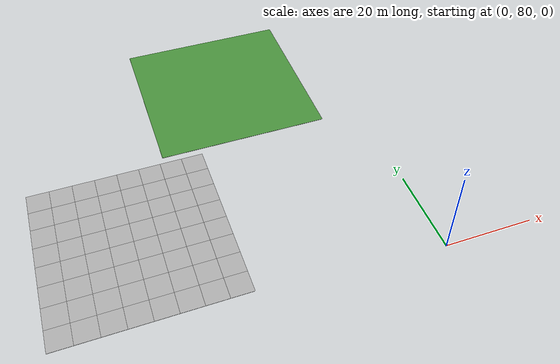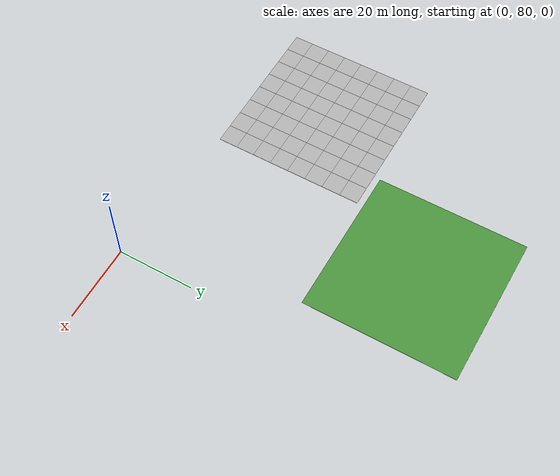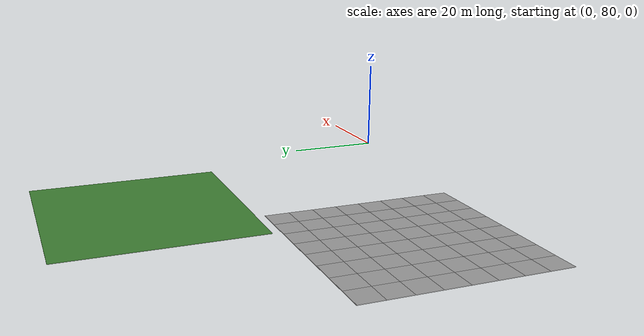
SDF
<sdf version="1.7">
 <world name="default">
  <model name="mud_plane_40x40_16">
   <model name="mud_plane_20x20">
    <model name="mud_plane">
     <static>1</static>
     <link name="link">
      <collision name="collision"><geometry><box><size>10 10 0.1</size></box></geometry></collision>
      <visual name="visual_1">
       <pose>-2.5 2.5 -0.05 0 -0 0</pose>
       <cast_shadows>0</cast_shadows>
       <geometry><box><size>5 5 0.1</size></box></geometry>
       <material>
        <script>
         <uri>model://mud_plane/materials/scripts</uri>
         <uri>model://mud_plane/materials/textures</uri>
         <name>vrc/mud</name>
        </script>
       </material>
      </visual>
      <visual name="visual_2">
       <pose>2.5 2.5 -0.05 0 -0 0</pose>
       <cast_shadows>0</cast_shadows>
       <geometry><box><size>5 5 0.1</size></box></geometry>
       <material>
        <script>
         <uri>model://mud_plane/materials/scripts</uri>
         <uri>model://mud_plane/materials/textures</uri>
         <name>vrc/mud</name>
        </script>
       </material>
      </visual>
      <visual name="visual_3">
       <pose>2.5 -2.5 -0.05 0 -0 0</pose>
       <cast_shadows>0</cast_shadows>
       <geometry><box><size>5 5 0.1</size></box></geometry>
       <material>
        <script>
         <uri>model://mud_plane/materials/scripts</uri>
         <uri>model://mud_plane/materials/textures</uri>
         <name>vrc/mud</name>
        </script>
       </material>
      </visual>
      <visual name="visual_4">
       <pose>-2.5 -2.5 -0.05 0 -0 0</pose>
       <cast_shadows>0</cast_shadows>
       <geometry><box><size>5 5 0.1</size></box></geometry>
       <material>
        <script>
         <uri>model://mud_plane/materials/scripts</uri>
         <uri>model://mud_plane/materials/textures</uri>
         <name>vrc/mud</name>
        </script>
       </material>
      </visual>
     </link>
     <pose>-4.99986 -4.99991 0 0 -0 0</pose>
    </model>
    <model name="mud_plane_0">
     <static>1</static>
     <link name="link">
      <collision name="collision"><geometry><box><size>10 10 0.1</size></box></geometry></collision>
      <visual name="visual_1">
       <pose>-2.5 2.5 -0.05 0 -0 0</pose>
       <cast_shadows>0</cast_shadows>
       <geometry><box><size>5 5 0.1</size></box></geometry>
       <material>
        <script>
         <uri>model://mud_plane/materials/scripts</uri>
         <uri>model://mud_plane/materials/textures</uri>
         <name>vrc/mud</name>
        </script>
       </material>
      </visual>
      <visual name="visual_2">
       <pose>2.5 2.5 -0.05 0 -0 0</pose>
       <cast_shadows>0</cast_shadows>
       <geometry><box><size>5 5 0.1</size></box></geometry>
       <material>
        <script>
         <uri>model://mud_plane/materials/scripts</uri>
         <uri>model://mud_plane/materials/textures</uri>
         <name>vrc/mud</name>
        </script>
       </material>
      </visual>
      <visual name="visual_3">
       <pose>2.5 -2.5 -0.05 0 -0 0</pose>
       <cast_shadows>0</cast_shadows>
       <geometry><box><size>5 5 0.1</size></box></geometry>
       <material>
        <script>
         <uri>model://mud_plane/materials/scripts</uri>
         <uri>model://mud_plane/materials/textures</uri>
         <name>vrc/mud</name>
        </script>
       </material>
      </visual>
      <visual name="visual_4">
       <pose>-2.5 -2.5 -0.05 0 -0 0</pose>
       <cast_shadows>0</cast_shadows>
       <geometry><box><size>5 5 0.1</size></box></geometry>
       <material>
        <script>
         <uri>model://mud_plane/materials/scripts</uri>
         <uri>model://mud_plane/materials/textures</uri>
         <name>vrc/mud</name>
        </script>
       </material>
      </visual>
     </link>
     <pose>-4.99946 4.99954 0 0 -0 0</pose>
    </model>
    <model name="mud_plane_1">
     <static>1</static>
     <link name="link">
      <collision name="collision"><geometry><box><size>10 10 0.1</size></box></geometry></collision>
      <visual name="visual_1">
       <pose>-2.5 2.5 -0.05 0 -0 0</pose>
       <cast_shadows>0</cast_shadows>
       <geometry><box><size>5 5 0.1</size></box></geometry>
       <material>
        <script>
         <uri>model://mud_plane/materials/scripts</uri>
         <uri>model://mud_plane/materials/textures</uri>
         <name>vrc/mud</name>
        </script>
       </material>
      </visual>
      <visual name="visual_2">
       <pose>2.5 2.5 -0.05 0 -0 0</pose>
       <cast_shadows>0</cast_shadows>
       <geometry><box><size>5 5 0.1</size></box></geometry>
       <material>
        <script>
         <uri>model://mud_plane/materials/scripts</uri>
         <uri>model://mud_plane/materials/textures</uri>
         <name>vrc/mud</name>
        </script>
       </material>
      </visual>
      <visual name="visual_3">
       <pose>2.5 -2.5 -0.05 0 -0 0</pose>
       <cast_shadows>0</cast_shadows>
       <geometry><box><size>5 5 0.1</size></box></geometry>
       <material>
        <script>
         <uri>model://mud_plane/materials/scripts</uri>
         <uri>model://mud_plane/materials/textures</uri>
         <name>vrc/mud</name>
        </script>
       </material>
      </visual>
      <visual name="visual_4">
       <pose>-2.5 -2.5 -0.05 0 -0 0</pose>
       <cast_shadows>0</cast_shadows>
       <geometry><box><size>5 5 0.1</size></box></geometry>
       <material>
        <script>
         <uri>model://mud_plane/materials/scripts</uri>
         <uri>model://mud_plane/materials/textures</uri>
         <name>vrc/mud</name>
        </script>
       </material>
      </visual>
     </link>
     <pose>4.99964 -4.99949 0 0 -0 0</pose>
    </model>
    <model name="mud_plane_2">
     <static>1</static>
     <link name="link">
      <collision name="collision"><geometry><box><size>10 10 0.1</size></box></geometry></collision>
      <visual name="visual_1">
       <pose>-2.5 2.5 -0.05 0 -0 0</pose>
       <cast_shadows>0</cast_shadows>
       <geometry><box><size>5 5 0.1</size></box></geometry>
       <material>
        <script>
         <uri>model://mud_plane/materials/scripts</uri>
         <uri>model://mud_plane/materials/textures</uri>
         <name>vrc/mud</name>
        </script>
       </material>
      </visual>
      <visual name="visual_2">
       <pose>2.5 2.5 -0.05 0 -0 0</pose>
       <cast_shadows>0</cast_shadows>
       <geometry><box><size>5 5 0.1</size></box></geometry>
       <material>
        <script>
         <uri>model://mud_plane/materials/scripts</uri>
         <uri>model://mud_plane/materials/textures</uri>
         <name>vrc/mud</name>
        </script>
       </material>
      </visual>
      <visual name="visual_3">
       <pose>2.5 -2.5 -0.05 0 -0 0</pose>
       <cast_shadows>0</cast_shadows>
       <geometry><box><size>5 5 0.1</size></box></geometry>
       <material>
        <script>
         <uri>model://mud_plane/materials/scripts</uri>
         <uri>model://mud_plane/materials/textures</uri>
         <name>vrc/mud</name>
        </script>
       </material>
      </visual>
      <visual name="visual_4">
       <pose>-2.5 -2.5 -0.05 0 -0 0</pose>
       <cast_shadows>0</cast_shadows>
       <geometry><box><size>5 5 0.1</size></box></geometry>
       <material>
        <script>
         <uri>model://mud_plane/materials/scripts</uri>
         <uri>model://mud_plane/materials/textures</uri>
         <name>vrc/mud</name>
        </script>
       </material>
      </visual>
     </link>
     <pose>4.99967 4.99986 0 0 -0 0</pose>
    </model>
    <static>0</static>
    <pose>-9.99895 9.99843 0 0 -0 0</pose>
   </model>
   <model name="mud_plane_20x20_0">
    <model name="mud_plane">
     <static>1</static>
     <link name="link">
      <collision name="collision"><geometry><box><size>10 10 0.1</size></box></geometry></collision>
      <visual name="visual_1">
       <pose>-2.5 2.5 -0.05 0 -0 0</pose>
       <cast_shadows>0</cast_shadows>
       <geometry><box><size>5 5 0.1</size></box></geometry>
       <material>
        <script>
         <uri>model://mud_plane/materials/scripts</uri>
         <uri>model://mud_plane/materials/textures</uri>
         <name>vrc/mud</name>
        </script>
       </material>
      </visual>
      <visual name="visual_2">
       <pose>2.5 2.5 -0.05 0 -0 0</pose>
       <cast_shadows>0</cast_shadows>
       <geometry><box><size>5 5 0.1</size></box></geometry>
       <material>
        <script>
         <uri>model://mud_plane/materials/scripts</uri>
         <uri>model://mud_plane/materials/textures</uri>
         <name>vrc/mud</name>
        </script>
       </material>
      </visual>
      <visual name="visual_3">
       <pose>2.5 -2.5 -0.05 0 -0 0</pose>
       <cast_shadows>0</cast_shadows>
       <geometry><box><size>5 5 0.1</size></box></geometry>
       <material>
        <script>
         <uri>model://mud_plane/materials/scripts</uri>
         <uri>model://mud_plane/materials/textures</uri>
         <name>vrc/mud</name>
        </script>
       </material>
      </visual>
      <visual name="visual_4">
       <pose>-2.5 -2.5 -0.05 0 -0 0</pose>
       <cast_shadows>0</cast_shadows>
       <geometry><box><size>5 5 0.1</size></box></geometry>
       <material>
        <script>
         <uri>model://mud_plane/materials/scripts</uri>
         <uri>model://mud_plane/materials/textures</uri>
         <name>vrc/mud</name>
        </script>
       </material>
      </visual>
     </link>
     <pose>-4.99986 -4.99991 0 0 -0 0</pose>
    </model>
    <model name="mud_plane_0">
     <static>1</static>
     <link name="link">
      <collision name="collision"><geometry><box><size>10 10 0.1</size></box></geometry></collision>
      <visual name="visual_1">
       <pose>-2.5 2.5 -0.05 0 -0 0</pose>
       <cast_shadows>0</cast_shadows>
       <geometry><box><size>5 5 0.1</size></box></geometry>
       <material>
        <script>
         <uri>model://mud_plane/materials/scripts</uri>
         <uri>model://mud_plane/materials/textures</uri>
         <name>vrc/mud</name>
        </script>
       </material>
      </visual>
      <visual name="visual_2">
       <pose>2.5 2.5 -0.05 0 -0 0</pose>
       <cast_shadows>0</cast_shadows>
       <geometry><box><size>5 5 0.1</size></box></geometry>
       <material>
        <script>
         <uri>model://mud_plane/materials/scripts</uri>
         <uri>model://mud_plane/materials/textures</uri>
         <name>vrc/mud</name>
        </script>
       </material>
      </visual>
      <visual name="visual_3">
       <pose>2.5 -2.5 -0.05 0 -0 0</pose>
       <cast_shadows>0</cast_shadows>
       <geometry><box><size>5 5 0.1</size></box></geometry>
       <material>
        <script>
         <uri>model://mud_plane/materials/scripts</uri>
         <uri>model://mud_plane/materials/textures</uri>
         <name>vrc/mud</name>
        </script>
       </material>
      </visual>
      <visual name="visual_4">
       <pose>-2.5 -2.5 -0.05 0 -0 0</pose>
       <cast_shadows>0</cast_shadows>
       <geometry><box><size>5 5 0.1</size></box></geometry>
       <material>
        <script>
         <uri>model://mud_plane/materials/scripts</uri>
         <uri>model://mud_plane/materials/textures</uri>
         <name>vrc/mud</name>
        </script>
       </material>
      </visual>
     </link>
     <pose>-4.99946 4.99954 0 0 -0 0</pose>
    </model>
    <model name="mud_plane_1">
     <static>1</static>
     <link name="link">
      <collision name="collision"><geometry><box><size>10 10 0.1</size></box></geometry></collision>
      <visual name="visual_1">
       <pose>-2.5 2.5 -0.05 0 -0 0</pose>
       <cast_shadows>0</cast_shadows>
       <geometry><box><size>5 5 0.1</size></box></geometry>
       <material>
        <script>
         <uri>model://mud_plane/materials/scripts</uri>
         <uri>model://mud_plane/materials/textures</uri>
         <name>vrc/mud</name>
        </script>
       </material>
      </visual>
      <visual name="visual_2">
       <pose>2.5 2.5 -0.05 0 -0 0</pose>
       <cast_shadows>0</cast_shadows>
       <geometry><box><size>5 5 0.1</size></box></geometry>
       <material>
        <script>
         <uri>model://mud_plane/materials/scripts</uri>
         <uri>model://mud_plane/materials/textures</uri>
         <name>vrc/mud</name>
        </script>
       </material>
      </visual>
      <visual name="visual_3">
       <pose>2.5 -2.5 -0.05 0 -0 0</pose>
       <cast_shadows>0</cast_shadows>
       <geometry><box><size>5 5 0.1</size></box></geometry>
       <material>
        <script>
         <uri>model://mud_plane/materials/scripts</uri>
         <uri>model://mud_plane/materials/textures</uri>
         <name>vrc/mud</name>
        </script>
       </material>
      </visual>
      <visual name="visual_4">
       <pose>-2.5 -2.5 -0.05 0 -0 0</pose>
       <cast_shadows>0</cast_shadows>
       <geometry><box><size>5 5 0.1</size></box></geometry>
       <material>
        <script>
         <uri>model://mud_plane/materials/scripts</uri>
         <uri>model://mud_plane/materials/textures</uri>
         <name>vrc/mud</name>
        </script>
       </material>
      </visual>
     </link>
     <pose>4.99964 -4.99949 0 0 -0 0</pose>
    </model>
    <model name="mud_plane_2">
     <static>1</static>
     <link name="link">
      <collision name="collision"><geometry><box><size>10 10 0.1</size></box></geometry></collision>
      <visual name="visual_1">
       <pose>-2.5 2.5 -0.05 0 -0 0</pose>
       <cast_shadows>0</cast_shadows>
       <geometry><box><size>5 5 0.1</size></box></geometry>
       <material>
        <script>
         <uri>model://mud_plane/materials/scripts</uri>
         <uri>model://mud_plane/materials/textures</uri>
         <name>vrc/mud</name>
        </script>
       </material>
      </visual>
      <visual name="visual_2">
       <pose>2.5 2.5 -0.05 0 -0 0</pose>
       <cast_shadows>0</cast_shadows>
       <geometry><box><size>5 5 0.1</size></box></geometry>
       <material>
        <script>
         <uri>model://mud_plane/materials/scripts</uri>
         <uri>model://mud_plane/materials/textures</uri>
         <name>vrc/mud</name>
        </script>
       </material>
      </visual>
      <visual name="visual_3">
       <pose>2.5 -2.5 -0.05 0 -0 0</pose>
       <cast_shadows>0</cast_shadows>
       <geometry><box><size>5 5 0.1</size></box></geometry>
       <material>
        <script>
         <uri>model://mud_plane/materials/scripts</uri>
         <uri>model://mud_plane/materials/textures</uri>
         <name>vrc/mud</name>
        </script>
       </material>
      </visual>
      <visual name="visual_4">
       <pose>-2.5 -2.5 -0.05 0 -0 0</pose>
       <cast_shadows>0</cast_shadows>
       <geometry><box><size>5 5 0.1</size></box></geometry>
       <material>
        <script>
         <uri>model://mud_plane/materials/scripts</uri>
         <uri>model://mud_plane/materials/textures</uri>
         <name>vrc/mud</name>
        </script>
       </material>
      </visual>
     </link>
     <pose>4.99967 4.99986 0 0 -0 0</pose>
    </model>
    <static>0</static>
    <pose>9.99933 9.9997 0 0 -0 0</pose>
   </model>
   <model name="mud_plane_20x20_1">
    <model name="mud_plane">
     <static>1</static>
     <link name="link">
      <collision name="collision"><geometry><box><size>10 10 0.1</size></box></geometry></collision>
      <visual name="visual_1">
       <pose>-2.5 2.5 -0.05 0 -0 0</pose>
       <cast_shadows>0</cast_shadows>
       <geometry><box><size>5 5 0.1</size></box></geometry>
       <material>
        <script>
         <uri>model://mud_plane/materials/scripts</uri>
         <uri>model://mud_plane/materials/textures</uri>
         <name>vrc/mud</name>
        </script>
       </material>
      </visual>
      <visual name="visual_2">
       <pose>2.5 2.5 -0.05 0 -0 0</pose>
       <cast_shadows>0</cast_shadows>
       <geometry><box><size>5 5 0.1</size></box></geometry>
       <material>
        <script>
         <uri>model://mud_plane/materials/scripts</uri>
         <uri>model://mud_plane/materials/textures</uri>
         <name>vrc/mud</name>
        </script>
       </material>
      </visual>
      <visual name="visual_3">
       <pose>2.5 -2.5 -0.05 0 -0 0</pose>
       <cast_shadows>0</cast_shadows>
       <geometry><box><size>5 5 0.1</size></box></geometry>
       <material>
        <script>
         <uri>model://mud_plane/materials/scripts</uri>
         <uri>model://mud_plane/materials/textures</uri>
         <name>vrc/mud</name>
        </script>
       </material>
      </visual>
      <visual name="visual_4">
       <pose>-2.5 -2.5 -0.05 0 -0 0</pose>
       <cast_shadows>0</cast_shadows>
       <geometry><box><size>5 5 0.1</size></box></geometry>
       <material>
        <script>
         <uri>model://mud_plane/materials/scripts</uri>
         <uri>model://mud_plane/materials/textures</uri>
         <name>vrc/mud</name>
        </script>
       </material>
      </visual>
     </link>
     <pose>-4.99986 -4.99991 0 0 -0 0</pose>
    </model>
    <model name="mud_plane_0">
     <static>1</static>
     <link name="link">
      <collision name="collision"><geometry><box><size>10 10 0.1</size></box></geometry></collision>
      <visual name="visual_1">
       <pose>-2.5 2.5 -0.05 0 -0 0</pose>
       <cast_shadows>0</cast_shadows>
       <geometry><box><size>5 5 0.1</size></box></geometry>
       <material>
        <script>
         <uri>model://mud_plane/materials/scripts</uri>
         <uri>model://mud_plane/materials/textures</uri>
         <name>vrc/mud</name>
        </script>
       </material>
      </visual>
      <visual name="visual_2">
       <pose>2.5 2.5 -0.05 0 -0 0</pose>
       <cast_shadows>0</cast_shadows>
       <geometry><box><size>5 5 0.1</size></box></geometry>
       <material>
        <script>
         <uri>model://mud_plane/materials/scripts</uri>
         <uri>model://mud_plane/materials/textures</uri>
         <name>vrc/mud</name>
        </script>
       </material>
      </visual>
      <visual name="visual_3">
       <pose>2.5 -2.5 -0.05 0 -0 0</pose>
       <cast_shadows>0</cast_shadows>
       <geometry><box><size>5 5 0.1</size></box></geometry>
       <material>
        <script>
         <uri>model://mud_plane/materials/scripts</uri>
         <uri>model://mud_plane/materials/textures</uri>
         <name>vrc/mud</name>
        </script>
       </material>
      </visual>
      <visual name="visual_4">
       <pose>-2.5 -2.5 -0.05 0 -0 0</pose>
       <cast_shadows>0</cast_shadows>
       <geometry><box><size>5 5 0.1</size></box></geometry>
       <material>
        <script>
         <uri>model://mud_plane/materials/scripts</uri>
         <uri>model://mud_plane/materials/textures</uri>
         <name>vrc/mud</name>
        </script>
       </material>
      </visual>
     </link>
     <pose>-4.99946 4.99954 0 0 -0 0</pose>
    </model>
    <model name="mud_plane_1">
     <static>1</static>
     <link name="link">
      <collision name="collision"><geometry><box><size>10 10 0.1</size></box></geometry></collision>
      <visual name="visual_1">
       <pose>-2.5 2.5 -0.05 0 -0 0</pose>
       <cast_shadows>0</cast_shadows>
       <geometry><box><size>5 5 0.1</size></box></geometry>
       <material>
        <script>
         <uri>model://mud_plane/materials/scripts</uri>
         <uri>model://mud_plane/materials/textures</uri>
         <name>vrc/mud</name>
        </script>
       </material>
      </visual>
      <visual name="visual_2">
       <pose>2.5 2.5 -0.05 0 -0 0</pose>
       <cast_shadows>0</cast_shadows>
       <geometry><box><size>5 5 0.1</size></box></geometry>
       <material>
        <script>
         <uri>model://mud_plane/materials/scripts</uri>
         <uri>model://mud_plane/materials/textures</uri>
         <name>vrc/mud</name>
        </script>
       </material>
      </visual>
      <visual name="visual_3">
       <pose>2.5 -2.5 -0.05 0 -0 0</pose>
       <cast_shadows>0</cast_shadows>
       <geometry><box><size>5 5 0.1</size></box></geometry>
       <material>
        <script>
         <uri>model://mud_plane/materials/scripts</uri>
         <uri>model://mud_plane/materials/textures</uri>
         <name>vrc/mud</name>
        </script>
       </material>
      </visual>
      <visual name="visual_4">
       <pose>-2.5 -2.5 -0.05 0 -0 0</pose>
       <cast_shadows>0</cast_shadows>
       <geometry><box><size>5 5 0.1</size></box></geometry>
       <material>
        <script>
         <uri>model://mud_plane/materials/scripts</uri>
         <uri>model://mud_plane/materials/textures</uri>
         <name>vrc/mud</name>
        </script>
       </material>
      </visual>
     </link>
     <pose>4.99964 -4.99949 0 0 -0 0</pose>
    </model>
    <model name="mud_plane_2">
     <static>1</static>
     <link name="link">
      <collision name="collision"><geometry><box><size>10 10 0.1</size></box></geometry></collision>
      <visual name="visual_1">
       <pose>-2.5 2.5 -0.05 0 -0 0</pose>
       <cast_shadows>0</cast_shadows>
       <geometry><box><size>5 5 0.1</size></box></geometry>
       <material>
        <script>
         <uri>model://mud_plane/materials/scripts</uri>
         <uri>model://mud_plane/materials/textures</uri>
         <name>vrc/mud</name>
        </script>
       </material>
      </visual>
      <visual name="visual_2">
       <pose>2.5 2.5 -0.05 0 -0 0</pose>
       <cast_shadows>0</cast_shadows>
       <geometry><box><size>5 5 0.1</size></box></geometry>
       <material>
        <script>
         <uri>model://mud_plane/materials/scripts</uri>
         <uri>model://mud_plane/materials/textures</uri>
         <name>vrc/mud</name>
        </script>
       </material>
      </visual>
      <visual name="visual_3">
       <pose>2.5 -2.5 -0.05 0 -0 0</pose>
       <cast_shadows>0</cast_shadows>
       <geometry><box><size>5 5 0.1</size></box></geometry>
       <material>
        <script>
         <uri>model://mud_plane/materials/scripts</uri>
         <uri>model://mud_plane/materials/textures</uri>
         <name>vrc/mud</name>
        </script>
       </material>
      </visual>
      <visual name="visual_4">
       <pose>-2.5 -2.5 -0.05 0 -0 0</pose>
       <cast_shadows>0</cast_shadows>
       <geometry><box><size>5 5 0.1</size></box></geometry>
       <material>
        <script>
         <uri>model://mud_plane/materials/scripts</uri>
         <uri>model://mud_plane/materials/textures</uri>
         <name>vrc/mud</name>
        </script>
       </material>
      </visual>
     </link>
     <pose>4.99967 4.99986 0 0 -0 0</pose>
    </model>
    <static>0</static>
    <pose>9.9993 -9.99877 0 0 -0 0</pose>
   </model>
   <model name="mud_plane_20x20_2">
    <model name="mud_plane">
     <static>1</static>
     <link name="link">
      <collision name="collision"><geometry><box><size>10 10 0.1</size></box></geometry></collision>
      <visual name="visual_1">
       <pose>-2.5 2.5 -0.05 0 -0 0</pose>
       <cast_shadows>0</cast_shadows>
       <geometry><box><size>5 5 0.1</size></box></geometry>
       <material>
        <script>
         <uri>model://mud_plane/materials/scripts</uri>
         <uri>model://mud_plane/materials/textures</uri>
         <name>vrc/mud</name>
        </script>
       </material>
      </visual>
      <visual name="visual_2">
       <pose>2.5 2.5 -0.05 0 -0 0</pose>
       <cast_shadows>0</cast_shadows>
       <geometry><box><size>5 5 0.1</size></box></geometry>
       <material>
        <script>
         <uri>model://mud_plane/materials/scripts</uri>
         <uri>model://mud_plane/materials/textures</uri>
         <name>vrc/mud</name>
        </script>
       </material>
      </visual>
      <visual name="visual_3">
       <pose>2.5 -2.5 -0.05 0 -0 0</pose>
       <cast_shadows>0</cast_shadows>
       <geometry><box><size>5 5 0.1</size></box></geometry>
       <material>
        <script>
         <uri>model://mud_plane/materials/scripts</uri>
         <uri>model://mud_plane/materials/textures</uri>
         <name>vrc/mud</name>
        </script>
       </material>
      </visual>
      <visual name="visual_4">
       <pose>-2.5 -2.5 -0.05 0 -0 0</pose>
       <cast_shadows>0</cast_shadows>
       <geometry><box><size>5 5 0.1</size></box></geometry>
       <material>
        <script>
         <uri>model://mud_plane/materials/scripts</uri>
         <uri>model://mud_plane/materials/textures</uri>
         <name>vrc/mud</name>
        </script>
       </material>
      </visual>
     </link>
     <pose>-4.99986 -4.99991 0 0 -0 0</pose>
    </model>
    <model name="mud_plane_0">
     <static>1</static>
     <link name="link">
      <collision name="collision"><geometry><box><size>10 10 0.1</size></box></geometry></collision>
      <visual name="visual_1">
       <pose>-2.5 2.5 -0.05 0 -0 0</pose>
       <cast_shadows>0</cast_shadows>
       <geometry><box><size>5 5 0.1</size></box></geometry>
       <material>
        <script>
         <uri>model://mud_plane/materials/scripts</uri>
         <uri>model://mud_plane/materials/textures</uri>
         <name>vrc/mud</name>
        </script>
       </material>
      </visual>
      <visual name="visual_2">
       <pose>2.5 2.5 -0.05 0 -0 0</pose>
       <cast_shadows>0</cast_shadows>
       <geometry><box><size>5 5 0.1</size></box></geometry>
       <material>
        <script>
         <uri>model://mud_plane/materials/scripts</uri>
         <uri>model://mud_plane/materials/textures</uri>
         <name>vrc/mud</name>
        </script>
       </material>
      </visual>
      <visual name="visual_3">
       <pose>2.5 -2.5 -0.05 0 -0 0</pose>
       <cast_shadows>0</cast_shadows>
       <geometry><box><size>5 5 0.1</size></box></geometry>
       <material>
        <script>
         <uri>model://mud_plane/materials/scripts</uri>
         <uri>model://mud_plane/materials/textures</uri>
         <name>vrc/mud</name>
        </script>
       </material>
      </visual>
      <visual name="visual_4">
       <pose>-2.5 -2.5 -0.05 0 -0 0</pose>
       <cast_shadows>0</cast_shadows>
       <geometry><box><size>5 5 0.1</size></box></geometry>
       <material>
        <script>
         <uri>model://mud_plane/materials/scripts</uri>
         <uri>model://mud_plane/materials/textures</uri>
         <name>vrc/mud</name>
        </script>
       </material>
      </visual>
     </link>
     <pose>-4.99946 4.99954 0 0 -0 0</pose>
    </model>
    <model name="mud_plane_1">
     <static>1</static>
     <link name="link">
      <collision name="collision"><geometry><box><size>10 10 0.1</size></box></geometry></collision>
      <visual name="visual_1">
       <pose>-2.5 2.5 -0.05 0 -0 0</pose>
       <cast_shadows>0</cast_shadows>
       <geometry><box><size>5 5 0.1</size></box></geometry>
       <material>
        <script>
         <uri>model://mud_plane/materials/scripts</uri>
         <uri>model://mud_plane/materials/textures</uri>
         <name>vrc/mud</name>
        </script>
       </material>
      </visual>
      <visual name="visual_2">
       <pose>2.5 2.5 -0.05 0 -0 0</pose>
       <cast_shadows>0</cast_shadows>
       <geometry><box><size>5 5 0.1</size></box></geometry>
       <material>
        <script>
         <uri>model://mud_plane/materials/scripts</uri>
         <uri>model://mud_plane/materials/textures</uri>
         <name>vrc/mud</name>
        </script>
       </material>
      </visual>
      <visual name="visual_3">
       <pose>2.5 -2.5 -0.05 0 -0 0</pose>
       <cast_shadows>0</cast_shadows>
       <geometry><box><size>5 5 0.1</size></box></geometry>
       <material>
        <script>
         <uri>model://mud_plane/materials/scripts</uri>
         <uri>model://mud_plane/materials/textures</uri>
         <name>vrc/mud</name>
        </script>
       </material>
      </visual>
      <visual name="visual_4">
       <pose>-2.5 -2.5 -0.05 0 -0 0</pose>
       <cast_shadows>0</cast_shadows>
       <geometry><box><size>5 5 0.1</size></box></geometry>
       <material>
        <script>
         <uri>model://mud_plane/materials/scripts</uri>
         <uri>model://mud_plane/materials/textures</uri>
         <name>vrc/mud</name>
        </script>
       </material>
      </visual>
     </link>
     <pose>4.99964 -4.99949 0 0 -0 0</pose>
    </model>
    <model name="mud_plane_2">
     <static>1</static>
     <link name="link">
      <collision name="collision"><geometry><box><size>10 10 0.1</size></box></geometry></collision>
      <visual name="visual_1">
       <pose>-2.5 2.5 -0.05 0 -0 0</pose>
       <cast_shadows>0</cast_shadows>
       <geometry><box><size>5 5 0.1</size></box></geometry>
       <material>
        <script>
         <uri>model://mud_plane/materials/scripts</uri>
         <uri>model://mud_plane/materials/textures</uri>
         <name>vrc/mud</name>
        </script>
       </material>
      </visual>
      <visual name="visual_2">
       <pose>2.5 2.5 -0.05 0 -0 0</pose>
       <cast_shadows>0</cast_shadows>
       <geometry><box><size>5 5 0.1</size></box></geometry>
       <material>
        <script>
         <uri>model://mud_plane/materials/scripts</uri>
         <uri>model://mud_plane/materials/textures</uri>
         <name>vrc/mud</name>
        </script>
       </material>
      </visual>
      <visual name="visual_3">
       <pose>2.5 -2.5 -0.05 0 -0 0</pose>
       <cast_shadows>0</cast_shadows>
       <geometry><box><size>5 5 0.1</size></box></geometry>
       <material>
        <script>
         <uri>model://mud_plane/materials/scripts</uri>
         <uri>model://mud_plane/materials/textures</uri>
         <name>vrc/mud</name>
        </script>
       </material>
      </visual>
      <visual name="visual_4">
       <pose>-2.5 -2.5 -0.05 0 -0 0</pose>
       <cast_shadows>0</cast_shadows>
       <geometry><box><size>5 5 0.1</size></box></geometry>
       <material>
        <script>
         <uri>model://mud_plane/materials/scripts</uri>
         <uri>model://mud_plane/materials/textures</uri>
         <name>vrc/mud</name>
        </script>
       </material>
      </visual>
     </link>
     <pose>4.99967 4.99986 0 0 -0 0</pose>
    </model>
    <static>0</static>
    <pose>-9.99969 -9.99935 0 0 -0 0</pose>
   </model>
   <static>0</static>
   <pose>-60.5175 102.942 0 0 -0 0</pose>
  </model>
  <model name="grass_plane_40x40_9">
   <pose>-29.5311 144.682 -0.05 0 -0 0</pose>
   <static>1</static>
   <link name="link">
    <collision name="collision"><geometry><box><size>40 40 0.1</size></box></geometry></collision>
    <visual name="grass">
     <cast_shadows>0</cast_shadows>
     <geometry><box><size>40 40 0.1</size></box></geometry>
     <material>
      <script><uri>file://media/materials/scripts/gazebo.material</uri><name>Gazebo/Grass</name></script>
     </material>
    </visual>
   </link>
  </model>
 </world>
</sdf>
